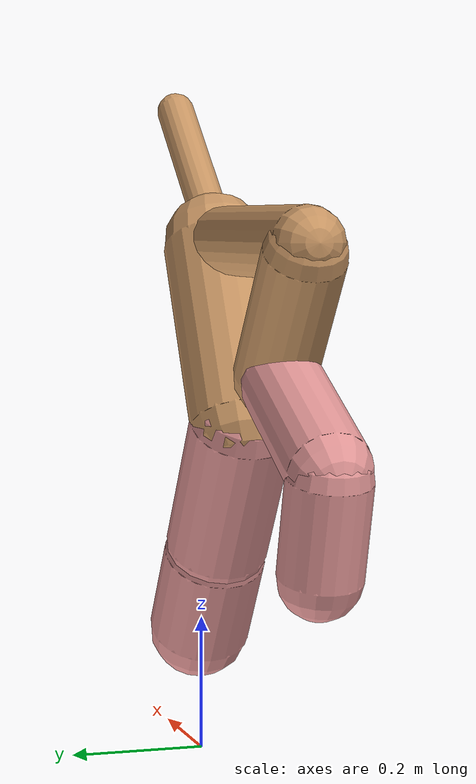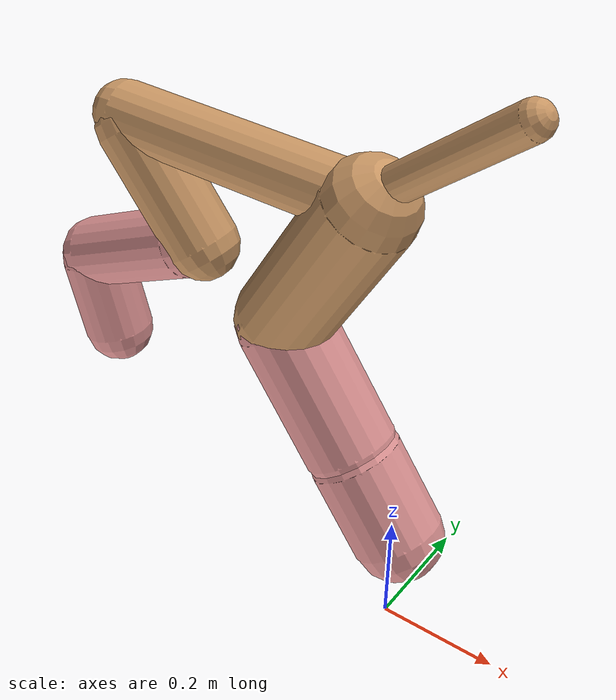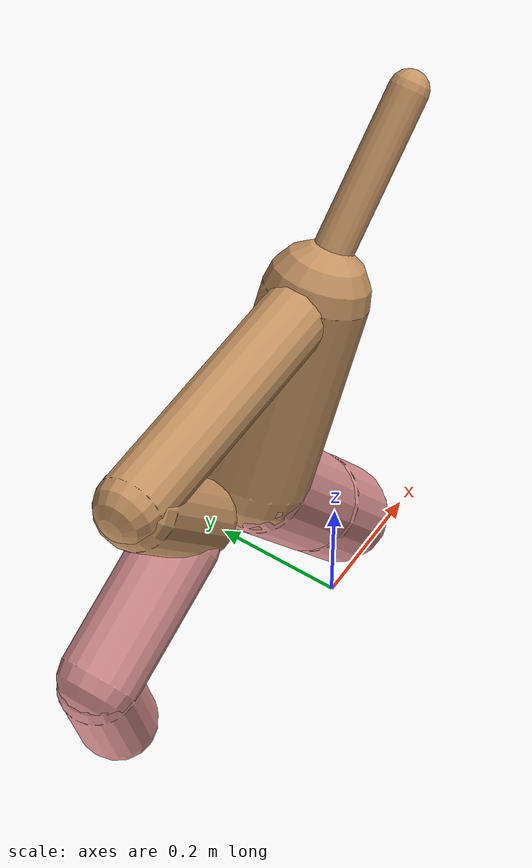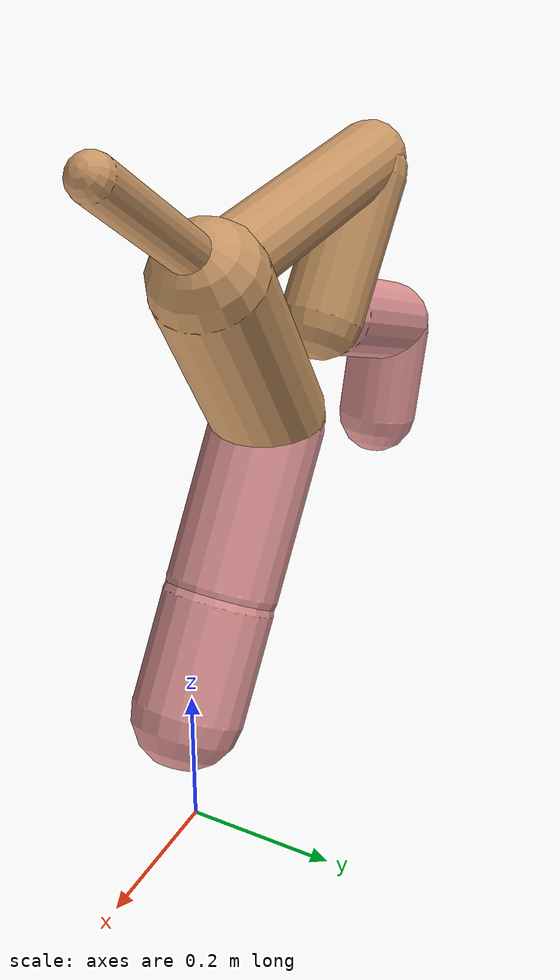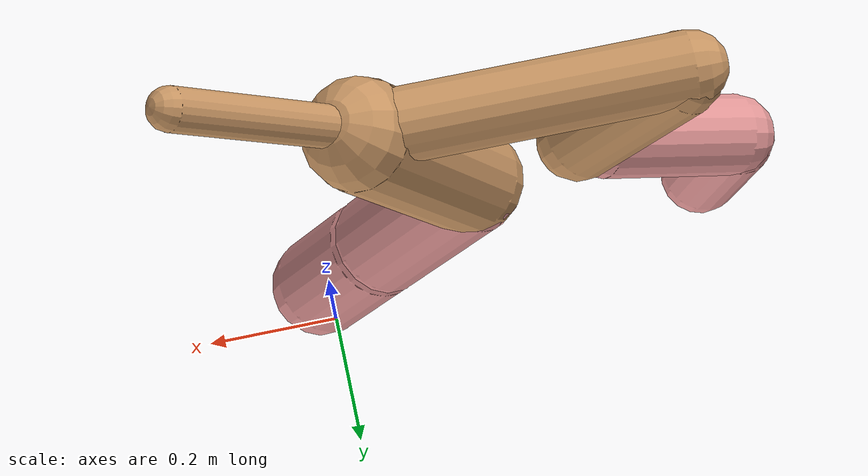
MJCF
<mujoco model="cheetah">
  <compiler angle="radian" coordinate="local" inertiafromgeom="true" settotalmass="14" />
  <default>
    <joint armature=".1" damping=".01" limited="true" solimplimit="0 .8 .03" solreflimit=".02 1" stiffness="8" />
    <geom conaffinity="0" condim="3" contype="1" friction="0.8 .1 .1" rgba="0.8 0.6 .4 1" solimp="0.0 0.8 0.01" solref="0.02 1" />
    <motor ctrllimited="true" ctrlrange="-1 1" />
  </default>
  <size nstack="300000" nuser_geom="1" />
  <option gravity="0 0 -9.81" timestep="0.01" />
  <worldbody>
    <body name="torso" pos="0.0 0.0 0.7681467544910243">
      <joint armature="0" axis="1 0 0" damping="0" limited="false" name="ignorex" pos="0 0 0" stiffness="0" type="slide" />
      <joint armature="0" axis="0 0 1" damping="0" limited="false" name="ignorez" pos="0 0 0" stiffness="0" type="slide" />
      <joint armature="0" axis="0 1 0" damping="0" limited="false" name="ignorey" pos="0 0 0" stiffness="0" type="hinge" />
      <geom fromto="-0.5 0.0 0.0 -0.06739096813726775 0.0 0.0" name="torso" size="0.04936889499319636" type="capsule" />
      <geom axisangle="0 1 0 .87" name="head" pos="0.03260903186273223 0.0 0.1" size="0.028214184565818503 0.15" type="capsule" />

      <body name="bthigh" pos="-.5 0 0">
        <joint axis="0 1 0" damping="6" name="bthigh" pos="0 0 0" range="-.52 1.05" stiffness="240" type="hinge" />
        <geom axisangle="0 1 0 -3.8" name="bthigh" pos="0.07467991623688655 0.0 -0.09708389110795251" size="0.05670825953725258 0.10347197492819805" type="capsule" />
        <body name="bshin" pos="0.1093598324737731 0.0 -0.18416778221590502">
          <joint axis="0 1 0" damping="4.5" name="bshin" pos="0 0 0" range="-.785 .785" stiffness="180" type="hinge" />
          <geom axisangle="0 1 0 -2.03" name="bshin" pos="-0.10157538467646979 0.0 -0.050787692338234894" rgba="0.9 0.6 0.6 1" size="0.05670825953725258 0.10703997406365316" type="capsule" />
          <body name="bfoot" pos="-0.20315076935293958 0.0 -0.10157538467646979">
            <joint axis="0 1 0" damping="3" name="bfoot" pos="0 0 0" range="-.4 .785" stiffness="120" type="hinge" />
            <geom axisangle="0 1 0 -.27" name="bfoot" pos="0.022045477504980662 0.0 -0.07128037726610416" rgba="0.9 0.6 0.6 1" size="0.05670825953725258 0.06707838374655599" type="capsule" />
            <inertial mass="10" />
          </body>
        </body>
      </body>
      <body name="fthigh" pos="-0.06739096813726775 0.0 0.0">
        <joint axis="0 1 0" damping="4.5" name="fthigh" pos="0 0 0" range="-1.5 0.8" stiffness="180" type="hinge" />
        <geom axisangle="0 1 0 .52" name="fthigh" pos="-0.07477703377041169 0.0 -0.12818920074927717" size="0.07479845753936928 0.1424806677273078" type="capsule" />
        <body name="fshin" pos="-0.14955406754082337 0.0 -0.25637840149855434">
          <joint axis="0 1 0" damping="3" name="fshin" pos="0 0 0" range="-1.2 1.1" stiffness="120" type="hinge" />
          <geom axisangle="0 1 0 -.6" name="fshin" pos="0.06942397885893557 0.0 -0.09612550918929541" rgba="0.9 0.6 0.6 1" size="0.07479845753936928 0.1135560208954483" type="capsule" />
          <body name="ffoot" pos="0.13884795771787115 0.0 -0.19225101837859082">
            <joint axis="0 1 0" damping="1.5" name="ffoot" pos="0 0 0" range="-3.1 -0.3" stiffness="60" type="hinge" />
            <geom axisangle="0 1 0 -.6" name="ffoot" pos="0.047698285812769775 0.0 -0.07419733348653078" rgba="0.9 0.6 0.6 1" size="0.07479845753936928 0.07498982511963569" type="capsule" />
            <inertial mass="10" />
          </body>
        </body>
      </body>
    </body>
  </worldbody>
  <actuator>
    <motor gear="120" joint="bthigh" name="bthigh" />
    <motor gear="90" joint="bshin" name="bshin" />
    <motor gear="60" joint="bfoot" name="bfoot" />
    <motor gear="120" joint="fthigh" name="fthigh" />
    <motor gear="60" joint="fshin" name="fshin" />
    <motor gear="30" joint="ffoot" name="ffoot" />
  </actuator>
</mujoco>
